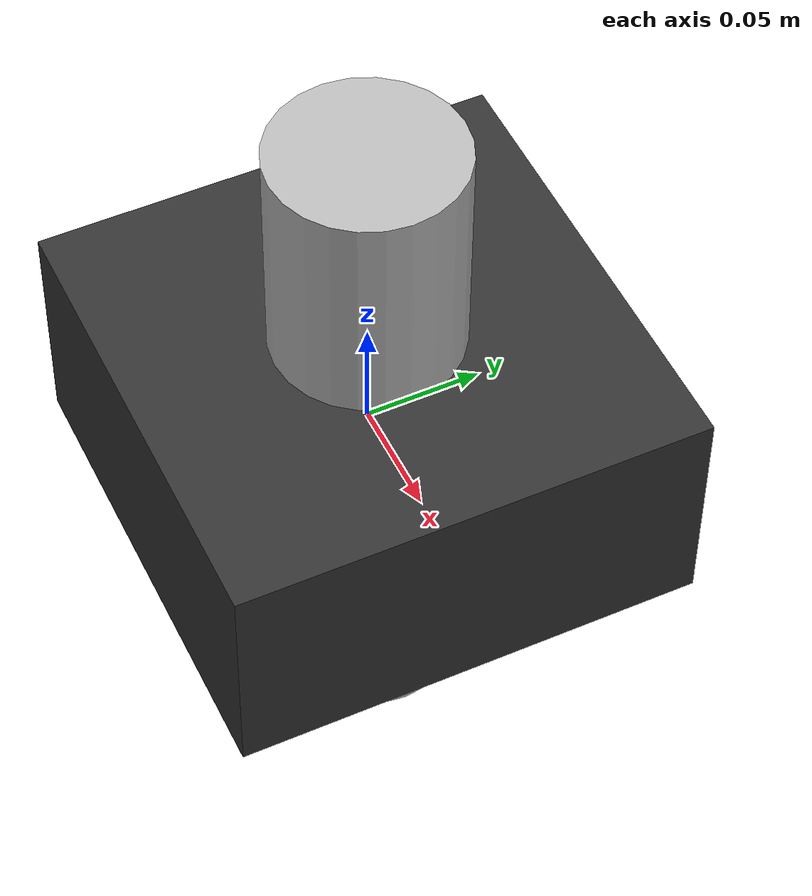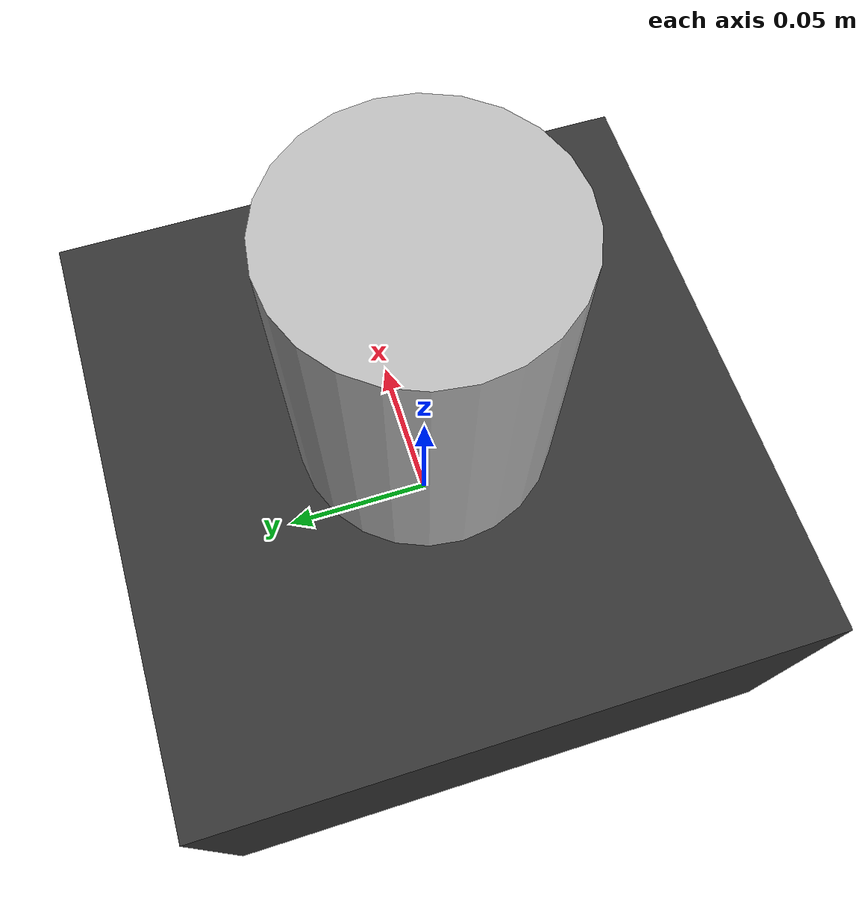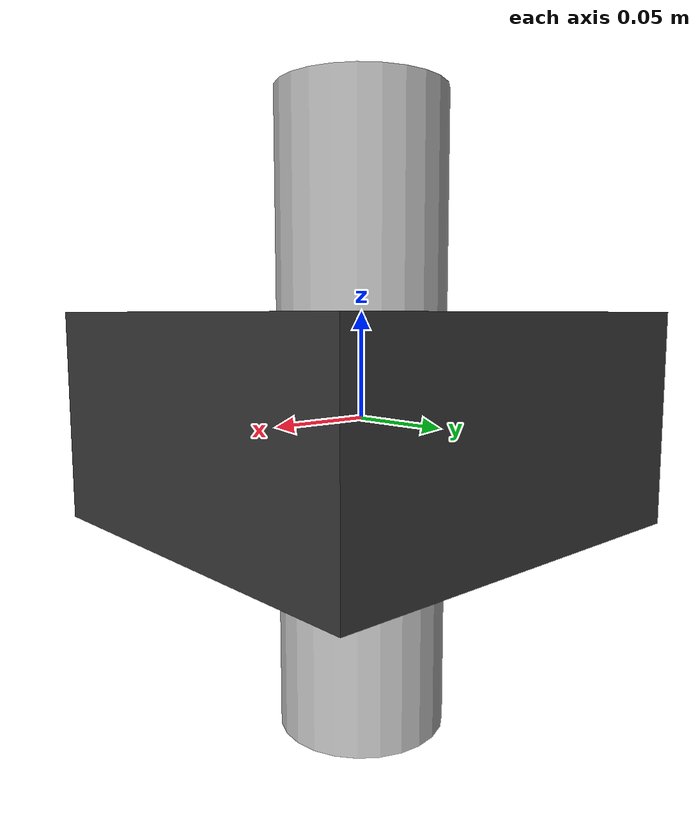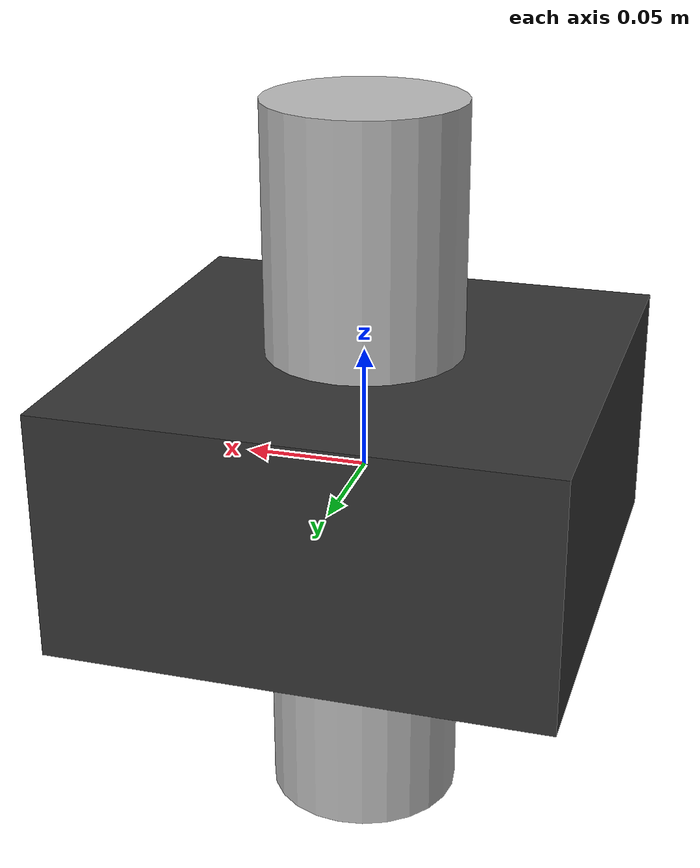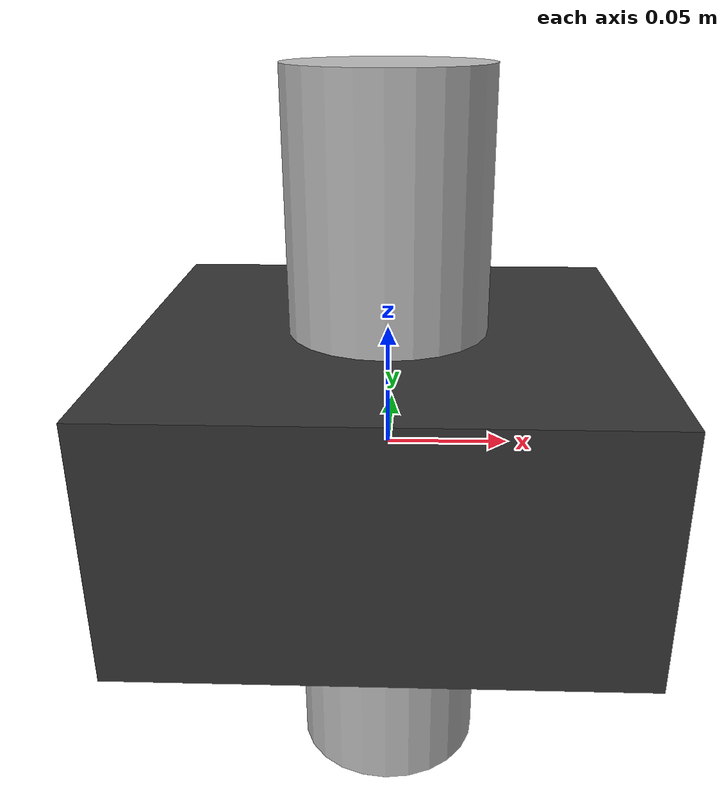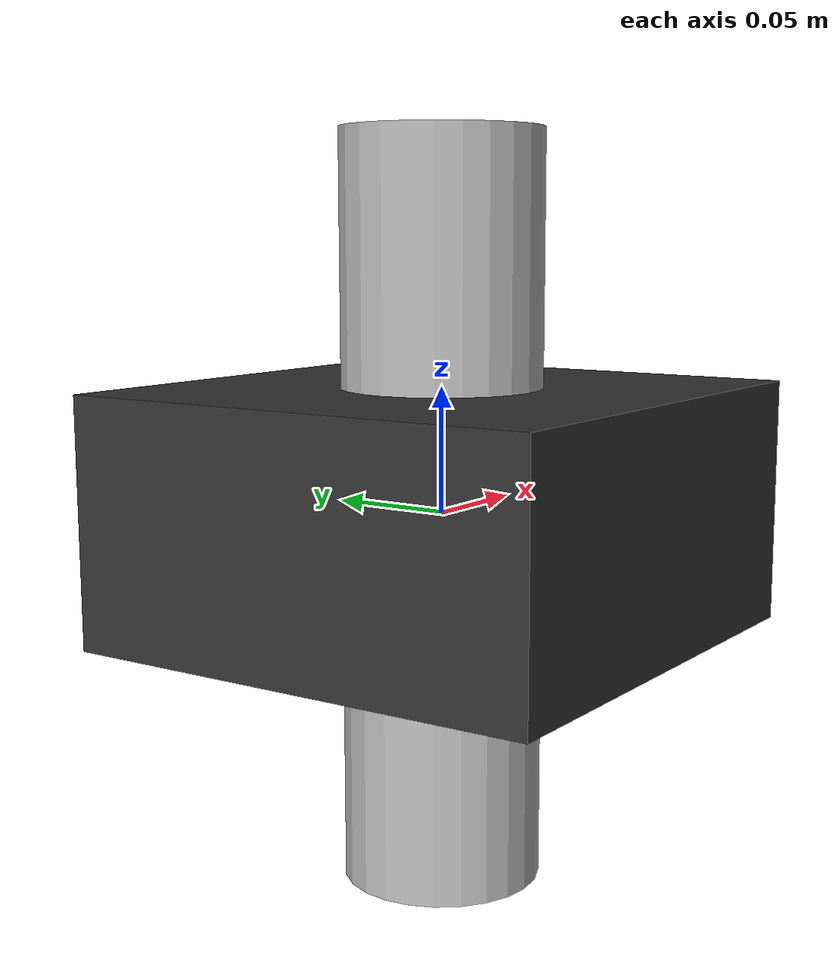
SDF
<?xml version="1.0" ?>
<sdf version="1.7">
  <model name="panda">
    <pose>0 0 0 0 0 0</pose>
    <static>false</static>
    <self_collide>false</self_collide>
    <allow_auto_disable>true</allow_auto_disable>

    <!-- ros2_control inside Gazebo Sim (Fortress on Humble) -->
    <!-- If your system has libgz_ros2_control-system.so instead, swap filename below -->
    <plugin name="gz_ros2_control" filename="libign_ros2_control-system.so">
      <parameters>model://panda/config/ros2_control_panda.yaml</parameters>
    </plugin>

    <!-- Simplified inertias and shapes; replace with real values as needed -->

    <link name="panda_link0">
      <pose>0 0 0.0 0 0 0</pose>
      <inertial>
        <mass>5.0</mass>
        <inertia>
          <ixx>0.02</ixx><ixy>0</ixy><ixz>0</ixz>
          <iyy>0.02</iyy><iyz>0</iyz>
          <izz>0.02</izz>
        </inertia>
      </inertial>
      <visual name="base_vis">
        <geometry>
          <box><size>0.2 0.2 0.1</size></box>
        </geometry>
        <material><ambient>0.2 0.2 0.2 1</ambient></material>
      </visual>
      <collision name="base_col">
        <geometry>
          <box><size>0.2 0.2 0.1</size></box>
        </geometry>
      </collision>
    </link>

    <link name="panda_link1">
      <inertial><mass>2.0
        </mass><inertia><ixx>0.01</ixx><iyy>0.01</iyy><izz>0.01</izz><ixy>0</ixy><ixz>0</ixz><iyz>0</iyz></inertia></inertial>
      <visual name="l1_vis">
        <geometry><cylinder><radius>0.04</radius><length>0.3</length></cylinder></geometry>
      </visual>
      <collision name="l1_col">
        <geometry><cylinder><radius>0.04</radius><length>0.3</length></cylinder></geometry>
      </collision>
    </link>

    <link name="panda_link2">
      <inertial><mass>1.5
        </mass><inertia><ixx>0.008</ixx><iyy>0.008</iyy><izz>0.008</izz><ixy>0</ixy><ixz>0</ixz><iyz>0</iyz></inertia></inertial>
      <visual name="l2_vis">
        <geometry><cylinder><radius>0.035</radius><length>0.28</length></cylinder></geometry>
      </visual>
      <collision name="l2_col">
        <geometry><cylinder><radius>0.035</radius><length>0.28</length></cylinder></geometry>
      </collision>
    </link>

    <link name="panda_link3">
      <inertial><mass>1.3
        </mass><inertia><ixx>0.006</ixx><iyy>0.006</iyy><izz>0.006</izz><ixy>0</ixy><ixz>0</ixz><iyz>0</iyz></inertia></inertial>
      <visual name="l3_vis">
        <geometry><cylinder><radius>0.032</radius><length>0.25</length></cylinder></geometry>
      </visual>
      <collision name="l3_col">
        <geometry><cylinder><radius>0.032</radius><length>0.25</length></cylinder></geometry>
      </collision>
    </link>

    <link name="panda_link4">
      <inertial><mass>1.2
        </mass><inertia><ixx>0.005</ixx><iyy>0.005</iyy><izz>0.005</izz><ixy>0</ixy><ixz>0</ixz><iyz>0</iyz></inertia></inertial>
      <visual name="l4_vis">
        <geometry><cylinder><radius>0.03</radius><length>0.23</length></cylinder></geometry>
      </visual>
      <collision name="l4_col">
        <geometry><cylinder><radius>0.03</radius><length>0.23</length></cylinder></geometry>
      </collision>
    </link>

    <link name="panda_link5">
      <inertial><mass>1.1
        </mass><inertia><ixx>0.004</ixx><iyy>0.004</iyy><izz>0.004</izz><ixy>0</ixy><ixz>0</ixz><iyz>0</iyz></inertia></inertial>
      <visual name="l5_vis">
        <geometry><cylinder><radius>0.028</radius><length>0.20</length></cylinder></geometry>
      </visual>
      <collision name="l5_col">
        <geometry><cylinder><radius>0.028</radius><length>0.20</length></cylinder></geometry>
      </collision>
    </link>

    <link name="panda_link6">
      <inertial><mass>0.9
        </mass><inertia><ixx>0.003</ixx><iyy>0.003</iyy><izz>0.003</izz><ixy>0</ixy><ixz>0</ixz><iyz>0</iyz></inertia></inertial>
      <visual name="l6_vis">
        <geometry><cylinder><radius>0.026</radius><length>0.18</length></cylinder></geometry>
      </visual>
      <collision name="l6_col">
        <geometry><cylinder><radius>0.026</radius><length>0.18</length></cylinder></geometry>
      </collision>
    </link>

    <link name="panda_link7">
      <inertial><mass>0.8
        </mass><inertia><ixx>0.0025</ixx><iyy>0.0025</iyy><izz>0.0025</izz><ixy>0</ixy><ixz>0</ixz><iyz>0</iyz></inertia></inertial>
      <visual name="l7_vis">
        <geometry><cylinder><radius>0.024</radius><length>0.16</length></cylinder></geometry>
      </visual>
      <collision name="l7_col">
        <geometry><cylinder><radius>0.024</radius><length>0.16</length></cylinder></geometry>
      </collision>
    </link>

    <link name="panda_hand">
      <inertial><mass>0.6
        </mass><inertia><ixx>0.002</ixx><iyy>0.002</iyy><izz>0.002</izz><ixy>0</ixy><ixz>0</ixz><iyz>0</iyz></inertia></inertial>
      <visual name="hand_vis">
        <geometry><box><size>0.06 0.06 0.06</size></box></geometry>
      </visual>
      <collision name="hand_col">
        <geometry><box><size>0.06 0.06 0.06</size></box></geometry>
      </collision>
    </link>

    <!-- Single moving finger for simplicity (common for sim control) -->
    <link name="panda_finger_link1">
      <inertial><mass>0.2
        </mass><inertia><ixx>0.0005</ixx><iyy>0.0005</iyy><izz>0.0005</izz><ixy>0</ixy><ixz>0</ixz><iyz>0</iyz></inertia></inertial>
      <visual name="finger1_vis">
        <geometry><box><size>0.015 0.02 0.08</size></box></geometry>
      </visual>
      <collision name="finger1_col">
        <geometry><box><size>0.015 0.02 0.08</size></box></geometry>
      </collision>
    </link>

    <!-- Axes alternate Z/Y to roughly reflect a typical 7-DoF arm layout -->
    <joint name="panda_joint1" type="revolute">
      <parent>panda_link0</parent>
      <child>panda_link1</child>
      <pose>0 0 0.05 0 0 0</pose>
      <axis>
        <xyz>0 0 1</xyz>
        <limit><lower>-3.0</lower><upper>3.0</upper><effort>87</effort><velocity>2.0</velocity></limit>
        <dynamics><damping>0.2</damping></dynamics>
      </axis>
    </joint>

    <joint name="panda_joint2" type="revolute">
      <parent>panda_link1</parent>
      <child>panda_link2</child>
      <pose>0 0 0.15 0 0 0</pose>
      <axis>
        <xyz>0 1 0</xyz>
        <limit><lower>-3.0</lower><upper>3.0</upper><effort>87</effort><velocity>2.0</velocity></limit>
        <dynamics><damping>0.2</damping></dynamics>
      </axis>
    </joint>

    <joint name="panda_joint3" type="revolute">
      <parent>panda_link2</parent>
      <child>panda_link3</child>
      <pose>0 0 0.14 0 0 0</pose>
      <axis>
        <xyz>0 0 1</xyz>
        <limit><lower>-3.0</lower><upper>3.0</upper><effort>87</effort><velocity>2.0</velocity></limit>
        <dynamics><damping>0.2</damping></dynamics>
      </axis>
    </joint>

    <joint name="panda_joint4" type="revolute">
      <parent>panda_link3</parent>
      <child>panda_link4</child>
      <pose>0 0 0.125 0 0 0</pose>
      <axis>
        <xyz>0 1 0</xyz>
        <limit><lower>-3.0</lower><upper>3.0</upper><effort>87</effort><velocity>2.0</velocity></limit>
        <dynamics><damping>0.2</damping></dynamics>
      </axis>
    </joint>

    <joint name="panda_joint5" type="revolute">
      <parent>panda_link4</parent>
      <child>panda_link5</child>
      <pose>0 0 0.115 0 0 0</pose>
      <axis>
        <xyz>0 0 1</xyz>
        <limit><lower>-3.0</lower><upper>3.0</upper><effort>12</effort><velocity>2.0</velocity></limit>
        <dynamics><damping>0.15</damping></dynamics>
      </axis>
    </joint>

    <joint name="panda_joint6" type="revolute">
      <parent>panda_link5</parent>
      <child>panda_link6</child>
      <pose>0 0 0.10 0 0 0</pose>
      <axis>
        <xyz>0 1 0</xyz>
        <limit><lower>-3.0</lower><upper>3.0</upper><effort>12</effort><velocity>2.0</velocity></limit>
        <dynamics><damping>0.15</damping></dynamics>
      </axis>
    </joint>

    <joint name="panda_joint7" type="revolute">
      <parent>panda_link6</parent>
      <child>panda_link7</child>
      <pose>0 0 0.09 0 0 0</pose>
      <axis>
        <xyz>0 0 1</xyz>
        <limit><lower>-3.0</lower><upper>3.0</upper><effort>12</effort><velocity>2.0</velocity></limit>
        <dynamics><damping>0.1</damping></dynamics>
      </axis>
    </joint>

    <joint name="panda_hand_joint" type="fixed">
      <parent>panda_link7</parent>
      <child>panda_hand</child>
      <pose>0 0 0.08 0 0 0</pose>
    </joint>

    <!-- Single prismatic finger (simple gripper model). Many configs control only one joint. -->
    <joint name="panda_finger_joint1" type="prismatic">
      <parent>panda_hand</parent>
      <child>panda_finger_link1</child>
      <pose>0 0 0.03 0 0 0</pose>
      <axis>
        <xyz>0 1 0</xyz>
        <limit><lower>0.0</lower><upper>0.04</upper><effort>20</effort><velocity>0.2</velocity></limit>
        <dynamics><damping>0.05</damping></dynamics>
      </axis>
    </joint>

  </model>
</sdf>
<?xml version="1.0" ?>
<sdf version="1.7">
  <model name="panda">
    <pose>0 0 0 0 0 0</pose>
    <static>false</static>
    <self_collide>false</self_collide>
    <allow_auto_disable>true</allow_auto_disable>

    <!-- ros2_control inside Gazebo Sim (Fortress on Humble) -->
    <!-- If your system has libgz_ros2_control-system.so instead, swap filename below -->
    <plugin name="gz_ros2_control" filename="libign_ros2_control-system.so">
      <parameters>model://panda/config/ros2_control_panda.yaml</parameters>
    </plugin>

    <!-- Simplified inertias and shapes; replace with real values as needed -->

    <link name="panda_link0">
      <pose>0 0 0.0 0 0 0</pose>
      <inertial>
        <mass>5.0</mass>
        <inertia>
          <ixx>0.02</ixx><ixy>0</ixy><ixz>0</ixz>
          <iyy>0.02</iyy><iyz>0</iyz>
          <izz>0.02</izz>
        </inertia>
      </inertial>
      <visual name="base_vis">
        <geometry>
          <box><size>0.2 0.2 0.1</size></box>
        </geometry>
        <material><ambient>0.2 0.2 0.2 1</ambient></material>
      </visual>
      <collision name="base_col">
        <geometry>
          <box><size>0.2 0.2 0.1</size></box>
        </geometry>
      </collision>
    </link>

    <link name="panda_link1">
      <inertial><mass>2.0
        </mass><inertia><ixx>0.01</ixx><iyy>0.01</iyy><izz>0.01</izz><ixy>0</ixy><ixz>0</ixz><iyz>0</iyz></inertia></inertial>
      <visual name="l1_vis">
        <geometry><cylinder><radius>0.04</radius><length>0.3</length></cylinder></geometry>
      </visual>
      <collision name="l1_col">
        <geometry><cylinder><radius>0.04</radius><length>0.3</length></cylinder></geometry>
      </collision>
    </link>

    <link name="panda_link2">
      <inertial><mass>1.5
        </mass><inertia><ixx>0.008</ixx><iyy>0.008</iyy><izz>0.008</izz><ixy>0</ixy><ixz>0</ixz><iyz>0</iyz></inertia></inertial>
      <visual name="l2_vis">
        <geometry><cylinder><radius>0.035</radius><length>0.28</length></cylinder></geometry>
      </visual>
      <collision name="l2_col">
        <geometry><cylinder><radius>0.035</radius><length>0.28</length></cylinder></geometry>
      </collision>
    </link>

    <link name="panda_link3">
      <inertial><mass>1.3
        </mass><inertia><ixx>0.006</ixx><iyy>0.006</iyy><izz>0.006</izz><ixy>0</ixy><ixz>0</ixz><iyz>0</iyz></inertia></inertial>
      <visual name="l3_vis">
        <geometry><cylinder><radius>0.032</radius><length>0.25</length></cylinder></geometry>
      </visual>
      <collision name="l3_col">
        <geometry><cylinder><radius>0.032</radius><length>0.25</length></cylinder></geometry>
      </collision>
    </link>

    <link name="panda_link4">
      <inertial><mass>1.2
        </mass><inertia><ixx>0.005</ixx><iyy>0.005</iyy><izz>0.005</izz><ixy>0</ixy><ixz>0</ixz><iyz>0</iyz></inertia></inertial>
      <visual name="l4_vis">
        <geometry><cylinder><radius>0.03</radius><length>0.23</length></cylinder></geometry>
      </visual>
      <collision name="l4_col">
        <geometry><cylinder><radius>0.03</radius><length>0.23</length></cylinder></geometry>
      </collision>
    </link>

    <link name="panda_link5">
      <inertial><mass>1.1
        </mass><inertia><ixx>0.004</ixx><iyy>0.004</iyy><izz>0.004</izz><ixy>0</ixy><ixz>0</ixz><iyz>0</iyz></inertia></inertial>
      <visual name="l5_vis">
        <geometry><cylinder><radius>0.028</radius><length>0.20</length></cylinder></geometry>
      </visual>
      <collision name="l5_col">
        <geometry><cylinder><radius>0.028</radius><length>0.20</length></cylinder></geometry>
      </collision>
    </link>

    <link name="panda_link6">
      <inertial><mass>0.9
        </mass><inertia><ixx>0.003</ixx><iyy>0.003</iyy><izz>0.003</izz><ixy>0</ixy><ixz>0</ixz><iyz>0</iyz></inertia></inertial>
      <visual name="l6_vis">
        <geometry><cylinder><radius>0.026</radius><length>0.18</length></cylinder></geometry>
      </visual>
      <collision name="l6_col">
        <geometry><cylinder><radius>0.026</radius><length>0.18</length></cylinder></geometry>
      </collision>
    </link>

    <link name="panda_link7">
      <inertial><mass>0.8
        </mass><inertia><ixx>0.0025</ixx><iyy>0.0025</iyy><izz>0.0025</izz><ixy>0</ixy><ixz>0</ixz><iyz>0</iyz></inertia></inertial>
      <visual name="l7_vis">
        <geometry><cylinder><radius>0.024</radius><length>0.16</length></cylinder></geometry>
      </visual>
      <collision name="l7_col">
        <geometry><cylinder><radius>0.024</radius><length>0.16</length></cylinder></geometry>
      </collision>
    </link>

    <link name="panda_hand">
      <inertial><mass>0.6
        </mass><inertia><ixx>0.002</ixx><iyy>0.002</iyy><izz>0.002</izz><ixy>0</ixy><ixz>0</ixz><iyz>0</iyz></inertia></inertial>
      <visual name="hand_vis">
        <geometry><box><size>0.06 0.06 0.06</size></box></geometry>
      </visual>
      <collision name="hand_col">
        <geometry><box><size>0.06 0.06 0.06</size></box></geometry>
      </collision>
    </link>

    <!-- Single moving finger for simplicity (common for sim control) -->
    <link name="panda_finger_link1">
      <inertial><mass>0.2
        </mass><inertia><ixx>0.0005</ixx><iyy>0.0005</iyy><izz>0.0005</izz><ixy>0</ixy><ixz>0</ixz><iyz>0</iyz></inertia></inertial>
      <visual name="finger1_vis">
        <geometry><box><size>0.015 0.02 0.08</size></box></geometry>
      </visual>
      <collision name="finger1_col">
        <geometry><box><size>0.015 0.02 0.08</size></box></geometry>
      </collision>
    </link>

    <!-- Axes alternate Z/Y to roughly reflect a typical 7-DoF arm layout -->
    <joint name="panda_joint1" type="revolute">
      <parent>panda_link0</parent>
      <child>panda_link1</child>
      <pose>0 0 0.05 0 0 0</pose>
      <axis>
        <xyz>0 0 1</xyz>
        <limit><lower>-3.0</lower><upper>3.0</upper><effort>87</effort><velocity>2.0</velocity></limit>
        <dynamics><damping>0.2</damping></dynamics>
      </axis>
    </joint>

    <joint name="panda_joint2" type="revolute">
      <parent>panda_link1</parent>
      <child>panda_link2</child>
      <pose>0 0 0.15 0 0 0</pose>
      <axis>
        <xyz>0 1 0</xyz>
        <limit><lower>-3.0</lower><upper>3.0</upper><effort>87</effort><velocity>2.0</velocity></limit>
        <dynamics><damping>0.2</damping></dynamics>
      </axis>
    </joint>

    <joint name="panda_joint3" type="revolute">
      <parent>panda_link2</parent>
      <child>panda_link3</child>
      <pose>0 0 0.14 0 0 0</pose>
      <axis>
        <xyz>0 0 1</xyz>
        <limit><lower>-3.0</lower><upper>3.0</upper><effort>87</effort><velocity>2.0</velocity></limit>
        <dynamics><damping>0.2</damping></dynamics>
      </axis>
    </joint>

    <joint name="panda_joint4" type="revolute">
      <parent>panda_link3</parent>
      <child>panda_link4</child>
      <pose>0 0 0.125 0 0 0</pose>
      <axis>
        <xyz>0 1 0</xyz>
        <limit><lower>-3.0</lower><upper>3.0</upper><effort>87</effort><velocity>2.0</velocity></limit>
        <dynamics><damping>0.2</damping></dynamics>
      </axis>
    </joint>

    <joint name="panda_joint5" type="revolute">
      <parent>panda_link4</parent>
      <child>panda_link5</child>
      <pose>0 0 0.115 0 0 0</pose>
      <axis>
        <xyz>0 0 1</xyz>
        <limit><lower>-3.0</lower><upper>3.0</upper><effort>12</effort><velocity>2.0</velocity></limit>
        <dynamics><damping>0.15</damping></dynamics>
      </axis>
    </joint>

    <joint name="panda_joint6" type="revolute">
      <parent>panda_link5</parent>
      <child>panda_link6</child>
      <pose>0 0 0.10 0 0 0</pose>
      <axis>
        <xyz>0 1 0</xyz>
        <limit><lower>-3.0</lower><upper>3.0</upper><effort>12</effort><velocity>2.0</velocity></limit>
        <dynamics><damping>0.15</damping></dynamics>
      </axis>
    </joint>

    <joint name="panda_joint7" type="revolute">
      <parent>panda_link6</parent>
      <child>panda_link7</child>
      <pose>0 0 0.09 0 0 0</pose>
      <axis>
        <xyz>0 0 1</xyz>
        <limit><lower>-3.0</lower><upper>3.0</upper><effort>12</effort><velocity>2.0</velocity></limit>
        <dynamics><damping>0.1</damping></dynamics>
      </axis>
    </joint>

    <joint name="panda_hand_joint" type="fixed">
      <parent>panda_link7</parent>
      <child>panda_hand</child>
      <pose>0 0 0.08 0 0 0</pose>
    </joint>

    <!-- Single prismatic finger (simple gripper model). Many configs control only one joint. -->
    <joint name="panda_finger_joint1" type="prismatic">
      <parent>panda_hand</parent>
      <child>panda_finger_link1</child>
      <pose>0 0 0.03 0 0 0</pose>
      <axis>
        <xyz>0 1 0</xyz>
        <limit><lower>0.0</lower><upper>0.04</upper><effort>20</effort><velocity>0.2</velocity></limit>
        <dynamics><damping>0.05</damping></dynamics>
      </axis>
    </joint>

  </model>
</sdf>
